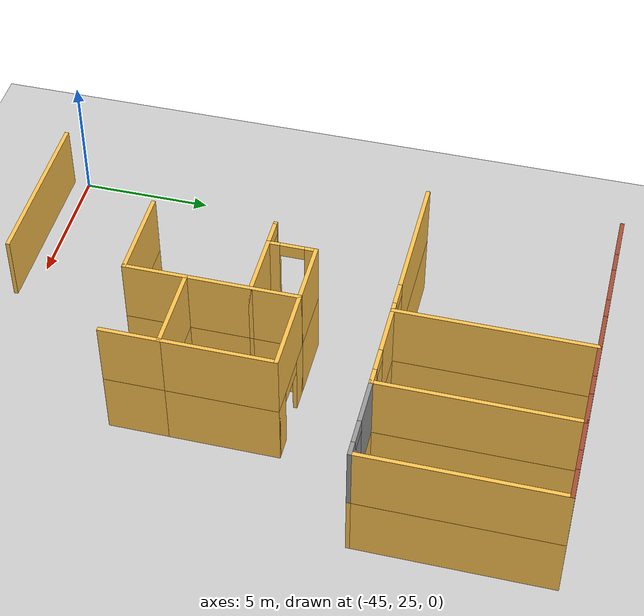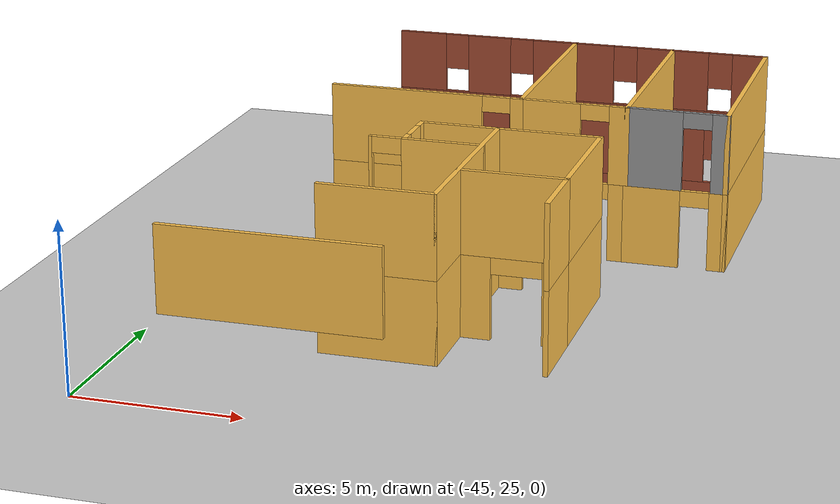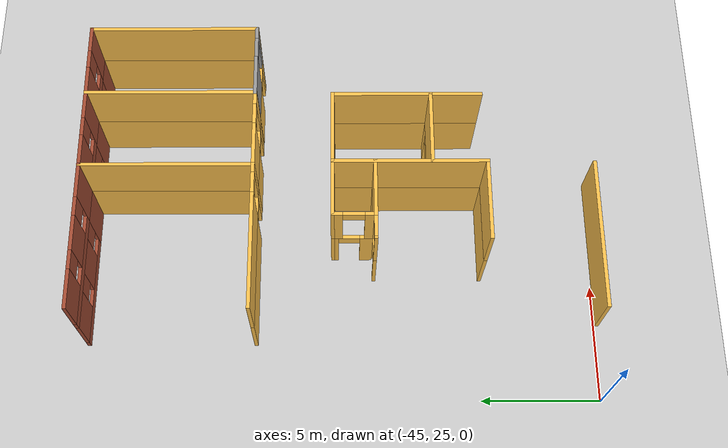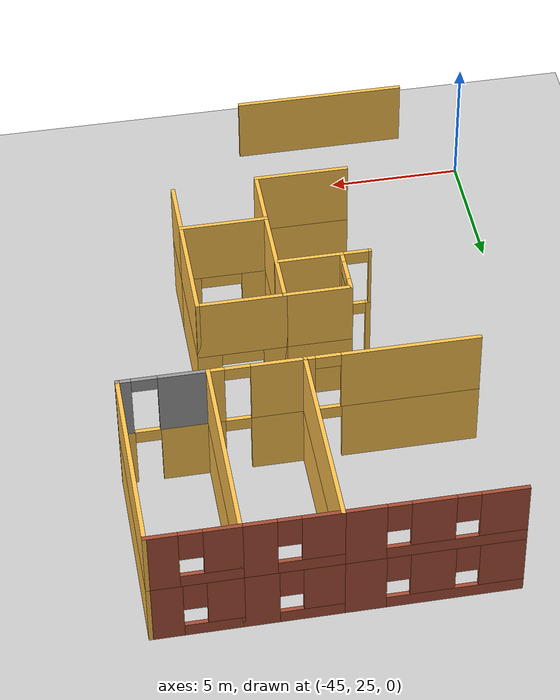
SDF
<sdf version="1.7">
 <world name="default">
  <model name="ground_plane">
   <static>1</static>
   <link name="link">
    <collision name="collision">
     <geometry><plane><normal>0 0 1</normal><size>100 100</size></plane></geometry>
     <surface>
      <contact><collide_bitmask>65535</collide_bitmask></contact>
      <friction><ode><mu>100</mu><mu2>50</mu2></ode></friction>
     </surface>
    </collision>
    <visual name="visual">
     <cast_shadows>0</cast_shadows>
     <geometry><plane><normal>0 0 1</normal><size>100 100</size></plane></geometry>
     <material>
      <script><uri>file://media/materials/scripts/gazebo.material</uri><name>Gazebo/Grey</name></script>
     </material>
    </visual>
   </link>
  </model>
  <model name="DepartmentBuilding">
   <pose>-25.6559 18.8293 0 0 -0 0</pose>
   <link name="Wall_258">
    <collision name="Wall_258_Collision">
     <geometry><box><size>7.25 0.15 2.5</size></box></geometry>
     <pose>0 0 1.25 0 -0 0</pose>
    </collision>
    <visual name="Wall_258_Visual">
     <pose>0 0 1.25 0 -0 0</pose>
     <geometry><box><size>7.25 0.15 2.5</size></box></geometry>
     <material>
      <script><uri>file://media/materials/scripts/gazebo.material</uri><name>Gazebo/Grey</name></script>
      <ambient>1 0.764706 0.305882 1</ambient>
     </material>
     <meta><layer>0</layer></meta>
    </visual>
    <pose>-4.28059 24.1391 0 0 -0 -1.5708</pose>
   </link>
   <link name="Wall_262">
    <pose>-5.83059 27.6891 0 0 -0 3.14159</pose>
    <visual name="Wall_262_Visual_0">
     <pose>-1.01733 0 1.25 0 -0 0</pose>
     <geometry><box><size>1.21533 0.15 2.5</size></box></geometry>
     <material>
      <script><uri>file://media/materials/scripts/gazebo.material</uri><name>Gazebo/Bricks</name></script>
      <ambient>1 1 1 1</ambient>
     </material>
     <meta><layer>0</layer></meta>
    </visual>
    <collision name="Wall_262_Collision_0">
     <geometry><box><size>1.21533 0.15 2.5</size></box></geometry>
     <pose>-1.01733 0 1.25 0 -0 0</pose>
    </collision>
    <visual name="Wall_262_Visual_1">
     <pose>0.607666 0 0.25 0 -0 0</pose>
     <geometry><box><size>2.03467 0.15 0.5</size></box></geometry>
     <material>
      <script><uri>file://media/materials/scripts/gazebo.material</uri><name>Gazebo/Bricks</name></script>
      <ambient>1 1 1 1</ambient>
     </material>
     <meta><layer>0</layer></meta>
    </visual>
    <collision name="Wall_262_Collision_1">
     <geometry><box><size>2.03467 0.15 0.5</size></box></geometry>
     <pose>0.607666 0 0.25 0 -0 0</pose>
    </collision>
    <visual name="Wall_262_Visual_2">
     <pose>1.00767 0 1.5 0 -0 0</pose>
     <geometry><box><size>1.23467 0.15 2</size></box></geometry>
     <material>
      <script><uri>file://media/materials/scripts/gazebo.material</uri><name>Gazebo/Bricks</name></script>
      <ambient>1 1 1 1</ambient>
     </material>
     <meta><layer>0</layer></meta>
    </visual>
    <collision name="Wall_262_Collision_2">
     <geometry><box><size>1.23467 0.15 2</size></box></geometry>
     <pose>1.00767 0 1.5 0 -0 0</pose>
    </collision>
    <visual name="Wall_262_Visual_3">
     <pose>-0.009667 0 1.9 0 -0 0</pose>
     <geometry><box><size>0.8 0.15 1.2</size></box></geometry>
     <material>
      <script><uri>file://media/materials/scripts/gazebo.material</uri><name>Gazebo/Bricks</name></script>
      <ambient>1 1 1 1</ambient>
     </material>
     <meta><layer>0</layer></meta>
    </visual>
    <collision name="Wall_262_Collision_3">
     <geometry><box><size>0.8 0.15 1.2</size></box></geometry>
     <pose>-0.009667 0 1.9 0 -0 0</pose>
    </collision>
   </link>
   <link name="Wall_263">
    <collision name="Wall_263_Collision">
     <geometry><box><size>7.25 0.15 2.5</size></box></geometry>
     <pose>0 0 1.25 0 -0 0</pose>
    </collision>
    <visual name="Wall_263_Visual">
     <pose>0 0 1.25 0 -0 0</pose>
     <geometry><box><size>7.25 0.15 2.5</size></box></geometry>
     <material>
      <script><uri>file://media/materials/scripts/gazebo.material</uri><name>Gazebo/Grey</name></script>
      <ambient>1 0.764706 0.305882 1</ambient>
     </material>
     <meta><layer>0</layer></meta>
    </visual>
    <pose>-7.38059 24.1391 0 0 -0 -1.5708</pose>
   </link>
   <link name="Wall_264">
    <pose>-5.83059 20.5891 0 0 -0 0</pose>
    <visual name="Wall_264_Visual_0">
     <pose>-0.735334 0 1.25 0 -0 0</pose>
     <geometry><box><size>1.77933 0.15 2.5</size></box></geometry>
     <material>
      <script><uri>file://media/materials/scripts/gazebo.material</uri><name>Gazebo/Grey</name></script>
      <ambient>1 0.764706 0.305882 1</ambient>
     </material>
     <meta><layer>0</layer></meta>
    </visual>
    <collision name="Wall_264_Collision_0">
     <geometry><box><size>1.77933 0.15 2.5</size></box></geometry>
     <pose>-0.735334 0 1.25 0 -0 0</pose>
    </collision>
    <visual name="Wall_264_Visual_1">
     <pose>1.33967 0 1.25 0 -0 0</pose>
     <geometry><box><size>0.570667 0.15 2.5</size></box></geometry>
     <material>
      <script><uri>file://media/materials/scripts/gazebo.material</uri><name>Gazebo/Grey</name></script>
      <ambient>1 0.764706 0.305882 1</ambient>
     </material>
     <meta><layer>0</layer></meta>
    </visual>
    <collision name="Wall_264_Collision_1">
     <geometry><box><size>0.570667 0.15 2.5</size></box></geometry>
     <pose>1.33967 0 1.25 0 -0 0</pose>
    </collision>
    <visual name="Wall_264_Visual_2">
     <pose>0.604333 0 2.25 0 -0 0</pose>
     <geometry><box><size>0.9 0.15 0.5</size></box></geometry>
     <material>
      <script><uri>file://media/materials/scripts/gazebo.material</uri><name>Gazebo/Grey</name></script>
      <ambient>1 0.764706 0.305882 1</ambient>
     </material>
     <meta><layer>0</layer></meta>
    </visual>
    <collision name="Wall_264_Collision_2">
     <geometry><box><size>0.9 0.15 0.5</size></box></geometry>
     <pose>0.604333 0 2.25 0 -0 0</pose>
    </collision>
   </link>
   <link name="Wall_266">
    <pose>-9.05559 27.6891 0 0 -0 3.14159</pose>
    <visual name="Wall_266_Visual_0">
     <pose>-1.08977 0 1.25 0 -0 0</pose>
     <geometry><box><size>1.32045 0.15 2.5</size></box></geometry>
     <material>
      <script><uri>file://media/materials/scripts/gazebo.material</uri><name>Gazebo/Bricks</name></script>
      <ambient>1 1 1 1</ambient>
     </material>
     <meta><layer>0</layer></meta>
    </visual>
    <collision name="Wall_266_Collision_0">
     <geometry><box><size>1.32045 0.15 2.5</size></box></geometry>
     <pose>-1.08977 0 1.25 0 -0 0</pose>
    </collision>
    <visual name="Wall_266_Visual_1">
     <pose>0.660227 0 0.25 0 -0 0</pose>
     <geometry><box><size>2.17955 0.15 0.5</size></box></geometry>
     <material>
      <script><uri>file://media/materials/scripts/gazebo.material</uri><name>Gazebo/Bricks</name></script>
      <ambient>1 1 1 1</ambient>
     </material>
     <meta><layer>0</layer></meta>
    </visual>
    <collision name="Wall_266_Collision_1">
     <geometry><box><size>2.17955 0.15 0.5</size></box></geometry>
     <pose>0.660227 0 0.25 0 -0 0</pose>
    </collision>
    <visual name="Wall_266_Visual_2">
     <pose>1.06023 0 1.5 0 -0 0</pose>
     <geometry><box><size>1.37955 0.15 2</size></box></geometry>
     <material>
      <script><uri>file://media/materials/scripts/gazebo.material</uri><name>Gazebo/Bricks</name></script>
      <ambient>1 1 1 1</ambient>
     </material>
     <meta><layer>0</layer></meta>
    </visual>
    <collision name="Wall_266_Collision_2">
     <geometry><box><size>1.37955 0.15 2</size></box></geometry>
     <pose>1.06023 0 1.5 0 -0 0</pose>
    </collision>
    <visual name="Wall_266_Visual_3">
     <pose>-0.029547 0 1.9 0 -0 0</pose>
     <geometry><box><size>0.8 0.15 1.2</size></box></geometry>
     <material>
      <script><uri>file://media/materials/scripts/gazebo.material</uri><name>Gazebo/Bricks</name></script>
      <ambient>1 1 1 1</ambient>
     </material>
     <meta><layer>0</layer></meta>
    </visual>
    <collision name="Wall_266_Collision_3">
     <geometry><box><size>0.8 0.15 1.2</size></box></geometry>
     <pose>-0.029547 0 1.9 0 -0 0</pose>
    </collision>
   </link>
   <link name="Wall_267">
    <collision name="Wall_267_Collision">
     <geometry><box><size>7.25 0.15 2.5</size></box></geometry>
     <pose>0 0 1.25 0 -0 0</pose>
    </collision>
    <visual name="Wall_267_Visual">
     <pose>0 0 1.25 0 -0 0</pose>
     <geometry><box><size>7.25 0.15 2.5</size></box></geometry>
     <material>
      <script><uri>file://media/materials/scripts/gazebo.material</uri><name>Gazebo/Grey</name></script>
      <ambient>1 0.764706 0.305882 1</ambient>
     </material>
     <meta><layer>0</layer></meta>
    </visual>
    <pose>-10.7306 24.1391 0 0 -0 -1.5708</pose>
   </link>
   <link name="Wall_268">
    <pose>-9.05559 20.5891 0 0 -0 0</pose>
    <visual name="Wall_268_Visual_0">
     <pose>-0.758203 0 1.25 0 -0 0</pose>
     <geometry><box><size>1.98359 0.15 2.5</size></box></geometry>
     <material>
      <script><uri>file://media/materials/scripts/gazebo.material</uri><name>Gazebo/Grey</name></script>
      <ambient>1 0.764706 0.305882 1</ambient>
     </material>
     <meta><layer>0</layer></meta>
    </visual>
    <collision name="Wall_268_Collision_0">
     <geometry><box><size>1.98359 0.15 2.5</size></box></geometry>
     <pose>-0.758203 0 1.25 0 -0 0</pose>
    </collision>
    <visual name="Wall_268_Visual_1">
     <pose>1.4418 0 1.25 0 -0 0</pose>
     <geometry><box><size>0.616405 0.15 2.5</size></box></geometry>
     <material>
      <script><uri>file://media/materials/scripts/gazebo.material</uri><name>Gazebo/Grey</name></script>
      <ambient>1 0.764706 0.305882 1</ambient>
     </material>
     <meta><layer>0</layer></meta>
    </visual>
    <collision name="Wall_268_Collision_1">
     <geometry><box><size>0.616405 0.15 2.5</size></box></geometry>
     <pose>1.4418 0 1.25 0 -0 0</pose>
    </collision>
    <visual name="Wall_268_Visual_2">
     <pose>0.683595 0 2.25 0 -0 0</pose>
     <geometry><box><size>0.9 0.15 0.5</size></box></geometry>
     <material>
      <script><uri>file://media/materials/scripts/gazebo.material</uri><name>Gazebo/Grey</name></script>
      <ambient>1 0.764706 0.305882 1</ambient>
     </material>
     <meta><layer>0</layer></meta>
    </visual>
    <collision name="Wall_268_Collision_2">
     <geometry><box><size>0.9 0.15 0.5</size></box></geometry>
     <pose>0.683595 0 2.25 0 -0 0</pose>
    </collision>
   </link>
   <link name="Wall_270">
    <pose>-13.7806 27.6891 0 0 -0 3.14159</pose>
    <visual name="Wall_270_Visual_0">
     <pose>-2.34715 0 1.25 0 -0 0</pose>
     <geometry><box><size>1.5557 0.15 2.5</size></box></geometry>
     <material>
      <script><uri>file://media/materials/scripts/gazebo.material</uri><name>Gazebo/Bricks</name></script>
      <ambient>1 1 1 1</ambient>
     </material>
     <meta><layer>0</layer></meta>
    </visual>
    <collision name="Wall_270_Collision_0">
     <geometry><box><size>1.5557 0.15 2.5</size></box></geometry>
     <pose>-2.34715 0 1.25 0 -0 0</pose>
    </collision>
    <visual name="Wall_270_Visual_1">
     <pose>0.777849 0 0.25 0 -0 0</pose>
     <geometry><box><size>4.6943 0.15 0.5</size></box></geometry>
     <material>
      <script><uri>file://media/materials/scripts/gazebo.material</uri><name>Gazebo/Bricks</name></script>
      <ambient>1 1 1 1</ambient>
     </material>
     <meta><layer>0</layer></meta>
    </visual>
    <collision name="Wall_270_Collision_1">
     <geometry><box><size>4.6943 0.15 0.5</size></box></geometry>
     <pose>0.777849 0 0.25 0 -0 0</pose>
    </collision>
    <visual name="Wall_270_Visual_2">
     <pose>-0.001207 0 1.5 0 -0 0</pose>
     <geometry><box><size>1.53619 0.15 2</size></box></geometry>
     <material>
      <script><uri>file://media/materials/scripts/gazebo.material</uri><name>Gazebo/Bricks</name></script>
      <ambient>1 1 1 1</ambient>
     </material>
     <meta><layer>0</layer></meta>
    </visual>
    <collision name="Wall_270_Collision_2">
     <geometry><box><size>1.53619 0.15 2</size></box></geometry>
     <pose>-0.001207 0 1.5 0 -0 0</pose>
    </collision>
    <visual name="Wall_270_Visual_3">
     <pose>2.34594 0 1.5 0 -0 0</pose>
     <geometry><box><size>1.55811 0.15 2</size></box></geometry>
     <material>
      <script><uri>file://media/materials/scripts/gazebo.material</uri><name>Gazebo/Bricks</name></script>
      <ambient>1 1 1 1</ambient>
     </material>
     <meta><layer>0</layer></meta>
    </visual>
    <collision name="Wall_270_Collision_3">
     <geometry><box><size>1.55811 0.15 2</size></box></geometry>
     <pose>2.34594 0 1.5 0 -0 0</pose>
    </collision>
    <visual name="Wall_270_Visual_4">
     <pose>-1.1693 0 1.9 0 -0 0</pose>
     <geometry><box><size>0.8 0.15 1.2</size></box></geometry>
     <material>
      <script><uri>file://media/materials/scripts/gazebo.material</uri><name>Gazebo/Bricks</name></script>
      <ambient>1 1 1 1</ambient>
     </material>
     <meta><layer>0</layer></meta>
    </visual>
    <collision name="Wall_270_Collision_4">
     <geometry><box><size>0.8 0.15 1.2</size></box></geometry>
     <pose>-1.1693 0 1.9 0 -0 0</pose>
    </collision>
    <visual name="Wall_270_Visual_5">
     <pose>1.16689 0 1.9 0 -0 0</pose>
     <geometry><box><size>0.8 0.15 1.2</size></box></geometry>
     <material>
      <script><uri>file://media/materials/scripts/gazebo.material</uri><name>Gazebo/Bricks</name></script>
      <ambient>1 1 1 1</ambient>
     </material>
     <meta><layer>0</layer></meta>
    </visual>
    <collision name="Wall_270_Collision_5">
     <geometry><box><size>0.8 0.15 1.2</size></box></geometry>
     <pose>1.16689 0 1.9 0 -0 0</pose>
    </collision>
   </link>
   <link name="Wall_272">
    <pose>-13.7805 20.5892 0 0 -0 -5.1e-05</pose>
    <visual name="Wall_272_Visual_0">
     <pose>-0.681368 0 1.25 0 -0 0</pose>
     <geometry><box><size>4.88726 0.15 2.5</size></box></geometry>
     <material>
      <script><uri>file://media/materials/scripts/gazebo.material</uri><name>Gazebo/Grey</name></script>
      <ambient>1 0.764706 0.305882 1</ambient>
     </material>
     <meta><layer>0</layer></meta>
    </visual>
    <collision name="Wall_272_Collision_0">
     <geometry><box><size>4.88726 0.15 2.5</size></box></geometry>
     <pose>-0.681368 0 1.25 0 -0 0</pose>
    </collision>
    <visual name="Wall_272_Visual_1">
     <pose>2.89363 0 1.25 0 -0 0</pose>
     <geometry><box><size>0.462736 0.15 2.5</size></box></geometry>
     <material>
      <script><uri>file://media/materials/scripts/gazebo.material</uri><name>Gazebo/Grey</name></script>
      <ambient>1 0.764706 0.305882 1</ambient>
     </material>
     <meta><layer>0</layer></meta>
    </visual>
    <collision name="Wall_272_Collision_1">
     <geometry><box><size>0.462736 0.15 2.5</size></box></geometry>
     <pose>2.89363 0 1.25 0 -0 0</pose>
    </collision>
    <visual name="Wall_272_Visual_2">
     <pose>2.21226 0 2.25 0 -0 0</pose>
     <geometry><box><size>0.9 0.15 0.5</size></box></geometry>
     <material>
      <script><uri>file://media/materials/scripts/gazebo.material</uri><name>Gazebo/Grey</name></script>
      <ambient>1 0.764706 0.305882 1</ambient>
     </material>
     <meta><layer>0</layer></meta>
    </visual>
    <collision name="Wall_272_Collision_2">
     <geometry><box><size>0.9 0.15 0.5</size></box></geometry>
     <pose>2.21226 0 2.25 0 -0 0</pose>
    </collision>
   </link>
   <link name="Wall_294">
    <collision name="Wall_294_Collision">
     <geometry><box><size>3.5 0.15 2.5</size></box></geometry>
     <pose>0 0 1.25 0 -0 0</pose>
    </collision>
    <visual name="Wall_294_Visual">
     <pose>0 0 1.25 0 -0 0</pose>
     <geometry><box><size>3.5 0.15 2.5</size></box></geometry>
     <material>
      <script><uri>file://media/materials/scripts/gazebo.material</uri><name>Gazebo/Grey</name></script>
      <ambient>1 0.764706 0.305882 1</ambient>
     </material>
     <meta><layer>0</layer></meta>
    </visual>
    <pose>-12.2556 10.9891 0 0 -0 0</pose>
   </link>
   <link name="Wall_295">
    <collision name="Wall_295_Collision">
     <geometry><box><size>6.5 0.15 2.5</size></box></geometry>
     <pose>0 0 1.25 0 -0 0</pose>
    </collision>
    <visual name="Wall_295_Visual">
     <pose>0 0 1.25 0 -0 0</pose>
     <geometry><box><size>6.5 0.15 2.5</size></box></geometry>
     <material>
      <script><uri>file://media/materials/scripts/gazebo.material</uri><name>Gazebo/Grey</name></script>
      <ambient>1 0.764706 0.305882 1</ambient>
     </material>
     <meta><layer>0</layer></meta>
    </visual>
    <pose>-10.5806 14.1641 0 0 -0 1.5708</pose>
   </link>
   <link name="Wall_296">
    <collision name="Wall_296_Collision">
     <geometry><box><size>2.5 0.15 2.5</size></box></geometry>
     <pose>0 0 1.25 0 -0 0</pose>
    </collision>
    <visual name="Wall_296_Visual">
     <pose>0 0 1.25 0 -0 0</pose>
     <geometry><box><size>2.5 0.15 2.5</size></box></geometry>
     <material>
      <script><uri>file://media/materials/scripts/gazebo.material</uri><name>Gazebo/Grey</name></script>
      <ambient>1 0.764706 0.305882 1</ambient>
     </material>
     <meta><layer>0</layer></meta>
    </visual>
    <pose>-11.7556 17.3391 0 0 -0 3.14159</pose>
   </link>
   <link name="Wall_303">
    <pose>-12.2556 15.5891 0 0 -0 0</pose>
    <visual name="Wall_303_Visual_0">
     <pose>-1.6565 0 1.25 0 -0 0</pose>
     <geometry><box><size>0.187 0.15 2.5</size></box></geometry>
     <material>
      <script><uri>file://media/materials/scripts/gazebo.material</uri><name>Gazebo/Grey</name></script>
      <ambient>1 0.764706 0.305882 1</ambient>
     </material>
     <meta><layer>0</layer></meta>
    </visual>
    <collision name="Wall_303_Collision_0">
     <geometry><box><size>0.187 0.15 2.5</size></box></geometry>
     <pose>-1.6565 0 1.25 0 -0 0</pose>
    </collision>
    <visual name="Wall_303_Visual_1">
     <pose>0.5435 0 1.25 0 -0 0</pose>
     <geometry><box><size>2.413 0.15 2.5</size></box></geometry>
     <material>
      <script><uri>file://media/materials/scripts/gazebo.material</uri><name>Gazebo/Grey</name></script>
      <ambient>1 0.764706 0.305882 1</ambient>
     </material>
     <meta><layer>0</layer></meta>
    </visual>
    <collision name="Wall_303_Collision_1">
     <geometry><box><size>2.413 0.15 2.5</size></box></geometry>
     <pose>0.5435 0 1.25 0 -0 0</pose>
    </collision>
    <visual name="Wall_303_Visual_2">
     <pose>-1.113 0 2.25 0 -0 0</pose>
     <geometry><box><size>0.9 0.15 0.5</size></box></geometry>
     <material>
      <script><uri>file://media/materials/scripts/gazebo.material</uri><name>Gazebo/Grey</name></script>
      <ambient>1 0.764706 0.305882 1</ambient>
     </material>
     <meta><layer>0</layer></meta>
    </visual>
    <collision name="Wall_303_Collision_2">
     <geometry><box><size>0.9 0.15 0.5</size></box></geometry>
     <pose>-1.113 0 2.25 0 -0 0</pose>
    </collision>
   </link>
   <link name="Wall_305">
    <pose>-12.9306 16.5391 0 0 -0 -1.5708</pose>
    <visual name="Wall_305_Visual_0">
     <pose>-0.718238 0 1.25 0 -0 0</pose>
     <geometry><box><size>0.313523 0.15 2.5</size></box></geometry>
     <material>
      <script><uri>file://media/materials/scripts/gazebo.material</uri><name>Gazebo/Grey</name></script>
      <ambient>1 0.764706 0.305882 1</ambient>
     </material>
     <meta><layer>0</layer></meta>
    </visual>
    <collision name="Wall_305_Collision_0">
     <geometry><box><size>0.313523 0.15 2.5</size></box></geometry>
     <pose>-0.718238 0 1.25 0 -0 0</pose>
    </collision>
    <visual name="Wall_305_Visual_1">
     <pose>0.606762 0 1.25 0 -0 0</pose>
     <geometry><box><size>0.536477 0.15 2.5</size></box></geometry>
     <material>
      <script><uri>file://media/materials/scripts/gazebo.material</uri><name>Gazebo/Grey</name></script>
      <ambient>1 0.764706 0.305882 1</ambient>
     </material>
     <meta><layer>0</layer></meta>
    </visual>
    <collision name="Wall_305_Collision_1">
     <geometry><box><size>0.536477 0.15 2.5</size></box></geometry>
     <pose>0.606762 0 1.25 0 -0 0</pose>
    </collision>
    <visual name="Wall_305_Visual_2">
     <pose>-0.111477 0 2.25 0 -0 0</pose>
     <geometry><box><size>0.9 0.15 0.5</size></box></geometry>
     <material>
      <script><uri>file://media/materials/scripts/gazebo.material</uri><name>Gazebo/Grey</name></script>
      <ambient>1 0.764706 0.305882 1</ambient>
     </material>
     <meta><layer>0</layer></meta>
    </visual>
    <collision name="Wall_305_Collision_2">
     <geometry><box><size>0.9 0.15 0.5</size></box></geometry>
     <pose>-0.111477 0 2.25 0 -0 0</pose>
    </collision>
   </link>
   <link name="Wall_307">
    <pose>-9.03059 17.3391 0 0 -0 0</pose>
    <visual name="Wall_307_Visual_0">
     <pose>-1.19293 0 1.25 0 -0 0</pose>
     <geometry><box><size>0.864143 0.15 2.5</size></box></geometry>
     <material>
      <script><uri>file://media/materials/scripts/gazebo.material</uri><name>Gazebo/Grey</name></script>
      <ambient>1 0.764706 0.305882 1</ambient>
     </material>
     <meta><layer>0</layer></meta>
    </visual>
    <collision name="Wall_307_Collision_0">
     <geometry><box><size>0.864143 0.15 2.5</size></box></geometry>
     <pose>-1.19293 0 1.25 0 -0 0</pose>
    </collision>
    <visual name="Wall_307_Visual_1">
     <pose>1.18207 0 1.25 0 -0 0</pose>
     <geometry><box><size>0.885857 0.15 2.5</size></box></geometry>
     <material>
      <script><uri>file://media/materials/scripts/gazebo.material</uri><name>Gazebo/Grey</name></script>
      <ambient>1 0.764706 0.305882 1</ambient>
     </material>
     <meta><layer>0</layer></meta>
    </visual>
    <collision name="Wall_307_Collision_1">
     <geometry><box><size>0.885857 0.15 2.5</size></box></geometry>
     <pose>1.18207 0 1.25 0 -0 0</pose>
    </collision>
    <visual name="Wall_307_Visual_2">
     <pose>-0.010857 0 2.25 0 -0 0</pose>
     <geometry><box><size>1.5 0.15 0.5</size></box></geometry>
     <material>
      <script><uri>file://media/materials/scripts/gazebo.material</uri><name>Gazebo/Grey</name></script>
      <ambient>1 0.764706 0.305882 1</ambient>
     </material>
     <meta><layer>0</layer></meta>
    </visual>
    <collision name="Wall_307_Collision_2">
     <geometry><box><size>1.5 0.15 0.5</size></box></geometry>
     <pose>-0.010857 0 2.25 0 -0 0</pose>
    </collision>
   </link>
   <link name="Wall_309">
    <collision name="Wall_309_Collision">
     <geometry><box><size>4.25 0.15 2.5</size></box></geometry>
     <pose>0 0 1.25 0 -0 0</pose>
    </collision>
    <visual name="Wall_309_Visual">
     <pose>0 0 1.25 0 -0 0</pose>
     <geometry><box><size>4.25 0.15 2.5</size></box></geometry>
     <material>
      <script><uri>file://media/materials/scripts/gazebo.material</uri><name>Gazebo/Grey</name></script>
      <ambient>1 0.764706 0.305882 1</ambient>
     </material>
     <meta><layer>0</layer></meta>
    </visual>
    <pose>-7.48059 15.2891 0 0 -0 -1.5708</pose>
   </link>
   <link name="Wall_310">
    <pose>-9.03059 13.2391 0 0 -0 3.14159</pose>
    <visual name="Wall_310_Visual_0">
     <pose>-1.26207 0 1.25 0 -0 0</pose>
     <geometry><box><size>0.725857 0.15 2.5</size></box></geometry>
     <material>
      <script><uri>file://media/materials/scripts/gazebo.material</uri><name>Gazebo/Grey</name></script>
      <ambient>1 0.764706 0.305882 1</ambient>
     </material>
     <meta><layer>0</layer></meta>
    </visual>
    <collision name="Wall_310_Collision_0">
     <geometry><box><size>0.725857 0.15 2.5</size></box></geometry>
     <pose>-1.26207 0 1.25 0 -0 0</pose>
    </collision>
    <visual name="Wall_310_Visual_1">
     <pose>1.11293 0 1.25 0 -0 0</pose>
     <geometry><box><size>1.02414 0.15 2.5</size></box></geometry>
     <material>
      <script><uri>file://media/materials/scripts/gazebo.material</uri><name>Gazebo/Grey</name></script>
      <ambient>1 0.764706 0.305882 1</ambient>
     </material>
     <meta><layer>0</layer></meta>
    </visual>
    <collision name="Wall_310_Collision_1">
     <geometry><box><size>1.02414 0.15 2.5</size></box></geometry>
     <pose>1.11293 0 1.25 0 -0 0</pose>
    </collision>
    <visual name="Wall_310_Visual_2">
     <pose>-0.149143 0 2.25 0 -0 0</pose>
     <geometry><box><size>1.5 0.15 0.5</size></box></geometry>
     <material>
      <script><uri>file://media/materials/scripts/gazebo.material</uri><name>Gazebo/Grey</name></script>
      <ambient>1 0.764706 0.305882 1</ambient>
     </material>
     <meta><layer>0</layer></meta>
    </visual>
    <collision name="Wall_310_Collision_2">
     <geometry><box><size>1.5 0.15 0.5</size></box></geometry>
     <pose>-0.149143 0 2.25 0 -0 0</pose>
    </collision>
   </link>
   <link name="Wall_312">
    <collision name="Wall_312_Collision">
     <geometry><box><size>2.25 0.15 2.5</size></box></geometry>
     <pose>0 0 1.25 0 -0 0</pose>
    </collision>
    <visual name="Wall_312_Visual">
     <pose>0 0 1.25 0 -0 0</pose>
     <geometry><box><size>2.25 0.15 2.5</size></box></geometry>
     <material>
      <script><uri>file://media/materials/scripts/gazebo.material</uri><name>Gazebo/Grey</name></script>
      <ambient>1 0.764706 0.305882 1</ambient>
     </material>
     <meta><layer>0</layer></meta>
    </visual>
    <pose>-7.48059 12.1891 0 0 -0 -1.5708</pose>
   </link>
   <link name="Wall_928">
    <collision name="Wall_928_Collision">
     <geometry><box><size>7.25 0.15 2.5</size></box></geometry>
     <pose>0 0 1.25 0 -0 0</pose>
    </collision>
    <visual name="Wall_928_Visual">
     <pose>0 0 1.25 0 -0 0</pose>
     <geometry><box><size>7.25 0.15 2.5</size></box></geometry>
     <material>
      <script><uri>file://media/materials/scripts/gazebo.material</uri><name>Gazebo/Grey</name></script>
      <ambient>1 0.764706 0.305882 1</ambient>
     </material>
     <meta><layer>1</layer></meta>
    </visual>
    <pose>-4.28059 24.1391 2.5 0 -0 -1.5708</pose>
   </link>
   <link name="Wall_930">
    <pose>-5.83059 27.6891 2.5 0 -0 3.14159</pose>
    <visual name="Wall_930_Visual_0">
     <pose>-1.04616 0 1.25 0 -0 0</pose>
     <geometry><box><size>1.15767 0.15 2.5</size></box></geometry>
     <material>
      <script><uri>file://media/materials/scripts/gazebo.material</uri><name>Gazebo/Bricks</name></script>
      <ambient>1 1 1 1</ambient>
     </material>
     <meta><layer>1</layer></meta>
    </visual>
    <collision name="Wall_930_Collision_0">
     <geometry><box><size>1.15767 0.15 2.5</size></box></geometry>
     <pose>-1.04616 0 1.25 0 -0 0</pose>
    </collision>
    <visual name="Wall_930_Visual_1">
     <pose>0.578837 0 0.25 0 -0 0</pose>
     <geometry><box><size>2.09233 0.15 0.5</size></box></geometry>
     <material>
      <script><uri>file://media/materials/scripts/gazebo.material</uri><name>Gazebo/Bricks</name></script>
      <ambient>1 1 1 1</ambient>
     </material>
     <meta><layer>1</layer></meta>
    </visual>
    <collision name="Wall_930_Collision_1">
     <geometry><box><size>2.09233 0.15 0.5</size></box></geometry>
     <pose>0.578837 0 0.25 0 -0 0</pose>
    </collision>
    <visual name="Wall_930_Visual_2">
     <pose>0.978837 0 1.5 0 -0 0</pose>
     <geometry><box><size>1.29233 0.15 2</size></box></geometry>
     <material>
      <script><uri>file://media/materials/scripts/gazebo.material</uri><name>Gazebo/Bricks</name></script>
      <ambient>1 1 1 1</ambient>
     </material>
     <meta><layer>1</layer></meta>
    </visual>
    <collision name="Wall_930_Collision_2">
     <geometry><box><size>1.29233 0.15 2</size></box></geometry>
     <pose>0.978837 0 1.5 0 -0 0</pose>
    </collision>
    <visual name="Wall_930_Visual_3">
     <pose>-0.067327 0 1.9 0 -0 0</pose>
     <geometry><box><size>0.8 0.15 1.2</size></box></geometry>
     <material>
      <script><uri>file://media/materials/scripts/gazebo.material</uri><name>Gazebo/Bricks</name></script>
      <ambient>1 1 1 1</ambient>
     </material>
     <meta><layer>1</layer></meta>
    </visual>
    <collision name="Wall_930_Collision_3">
     <geometry><box><size>0.8 0.15 1.2</size></box></geometry>
     <pose>-0.067327 0 1.9 0 -0 0</pose>
    </collision>
   </link>
   <link name="Wall_931">
    <collision name="Wall_931_Collision">
     <geometry><box><size>7.25 0.15 2.5</size></box></geometry>
     <pose>0 0 1.25 0 -0 0</pose>
    </collision>
    <visual name="Wall_931_Visual">
     <pose>0 0 1.25 0 -0 0</pose>
     <geometry><box><size>7.25 0.15 2.5</size></box></geometry>
     <material>
      <script><uri>file://media/materials/scripts/gazebo.material</uri><name>Gazebo/Grey</name></script>
      <ambient>1 0.764706 0.305882 1</ambient>
     </material>
     <meta><layer>1</layer></meta>
    </visual>
    <pose>-7.38059 24.1391 2.5 0 -0 -1.5708</pose>
   </link>
   <link name="Wall_932">
    <pose>-5.83059 20.5891 2.5 0 -0 0</pose>
    <visual name="Wall_932_Visual_0">
     <pose>-0.719976 0 1.25 0 -0 0</pose>
     <geometry><box><size>1.81005 0.15 2.5</size></box></geometry>
     <material>
      <script><uri>file://media/materials/scripts/gazebo.material</uri><name>Gazebo/Grey</name></script>
      <ambient>1 1 1 1</ambient>
     </material>
     <meta><layer>1</layer></meta>
    </visual>
    <collision name="Wall_932_Collision_0">
     <geometry><box><size>1.81005 0.15 2.5</size></box></geometry>
     <pose>-0.719976 0 1.25 0 -0 0</pose>
    </collision>
    <visual name="Wall_932_Visual_1">
     <pose>1.35502 0 1.25 0 -0 0</pose>
     <geometry><box><size>0.539953 0.15 2.5</size></box></geometry>
     <material>
      <script><uri>file://media/materials/scripts/gazebo.material</uri><name>Gazebo/Grey</name></script>
      <ambient>1 1 1 1</ambient>
     </material>
     <meta><layer>1</layer></meta>
    </visual>
    <collision name="Wall_932_Collision_1">
     <geometry><box><size>0.539953 0.15 2.5</size></box></geometry>
     <pose>1.35502 0 1.25 0 -0 0</pose>
    </collision>
    <visual name="Wall_932_Visual_2">
     <pose>0.635047 0 2.25 0 -0 0</pose>
     <geometry><box><size>0.9 0.15 0.5</size></box></geometry>
     <material>
      <script><uri>file://media/materials/scripts/gazebo.material</uri><name>Gazebo/Grey</name></script>
      <ambient>1 1 1 1</ambient>
     </material>
     <meta><layer>1</layer></meta>
    </visual>
    <collision name="Wall_932_Collision_2">
     <geometry><box><size>0.9 0.15 0.5</size></box></geometry>
     <pose>0.635047 0 2.25 0 -0 0</pose>
    </collision>
   </link>
   <link name="Wall_933">
    <pose>-9.05559 27.6891 2.5 0 -0 3.14159</pose>
    <visual name="Wall_933_Visual_0">
     <pose>-1.11208 0 1.25 0 -0 0</pose>
     <geometry><box><size>1.27584 0.15 2.5</size></box></geometry>
     <material>
      <script><uri>file://media/materials/scripts/gazebo.material</uri><name>Gazebo/Bricks</name></script>
      <ambient>1 1 1 1</ambient>
     </material>
     <meta><layer>1</layer></meta>
    </visual>
    <collision name="Wall_933_Collision_0">
     <geometry><box><size>1.27584 0.15 2.5</size></box></geometry>
     <pose>-1.11208 0 1.25 0 -0 0</pose>
    </collision>
    <visual name="Wall_933_Visual_1">
     <pose>0.637922 0 0.25 0 -0 0</pose>
     <geometry><box><size>2.22416 0.15 0.5</size></box></geometry>
     <material>
      <script><uri>file://media/materials/scripts/gazebo.material</uri><name>Gazebo/Bricks</name></script>
      <ambient>1 1 1 1</ambient>
     </material>
     <meta><layer>1</layer></meta>
    </visual>
    <collision name="Wall_933_Collision_1">
     <geometry><box><size>2.22416 0.15 0.5</size></box></geometry>
     <pose>0.637922 0 0.25 0 -0 0</pose>
    </collision>
    <visual name="Wall_933_Visual_2">
     <pose>1.03792 0 1.5 0 -0 0</pose>
     <geometry><box><size>1.42416 0.15 2</size></box></geometry>
     <material>
      <script><uri>file://media/materials/scripts/gazebo.material</uri><name>Gazebo/Bricks</name></script>
      <ambient>1 1 1 1</ambient>
     </material>
     <meta><layer>1</layer></meta>
    </visual>
    <collision name="Wall_933_Collision_2">
     <geometry><box><size>1.42416 0.15 2</size></box></geometry>
     <pose>1.03792 0 1.5 0 -0 0</pose>
    </collision>
    <visual name="Wall_933_Visual_3">
     <pose>-0.074156 0 1.9 0 -0 0</pose>
     <geometry><box><size>0.8 0.15 1.2</size></box></geometry>
     <material>
      <script><uri>file://media/materials/scripts/gazebo.material</uri><name>Gazebo/Bricks</name></script>
      <ambient>1 1 1 1</ambient>
     </material>
     <meta><layer>1</layer></meta>
    </visual>
    <collision name="Wall_933_Collision_3">
     <geometry><box><size>0.8 0.15 1.2</size></box></geometry>
     <pose>-0.074156 0 1.9 0 -0 0</pose>
    </collision>
   </link>
   <link name="Wall_934">
    <collision name="Wall_934_Collision">
     <geometry><box><size>7.25 0.15 2.5</size></box></geometry>
     <pose>0 0 1.25 0 -0 0</pose>
    </collision>
    <visual name="Wall_934_Visual">
     <pose>0 0 1.25 0 -0 0</pose>
     <geometry><box><size>7.25 0.15 2.5</size></box></geometry>
     <material>
      <script><uri>file://media/materials/scripts/gazebo.material</uri><name>Gazebo/Grey</name></script>
      <ambient>1 0.764706 0.305882 1</ambient>
     </material>
     <meta><layer>1</layer></meta>
    </visual>
    <pose>-10.7306 24.1391 2.5 0 -0 -1.5708</pose>
   </link>
   <link name="Wall_935">
    <pose>-9.05559 20.5891 2.5 0 -0 0</pose>
    <visual name="Wall_935_Visual_0">
     <pose>-0.765988 0 1.25 0 -0 0</pose>
     <geometry><box><size>1.96802 0.15 2.5</size></box></geometry>
     <material>
      <script><uri>file://media/materials/scripts/gazebo.material</uri><name>Gazebo/Grey</name></script>
      <ambient>1 0.764706 0.305882 1</ambient>
     </material>
     <meta><layer>1</layer></meta>
    </visual>
    <collision name="Wall_935_Collision_0">
     <geometry><box><size>1.96802 0.15 2.5</size></box></geometry>
     <pose>-0.765988 0 1.25 0 -0 0</pose>
    </collision>
    <visual name="Wall_935_Visual_1">
     <pose>1.43401 0 1.25 0 -0 0</pose>
     <geometry><box><size>0.631976 0.15 2.5</size></box></geometry>
     <material>
      <script><uri>file://media/materials/scripts/gazebo.material</uri><name>Gazebo/Grey</name></script>
      <ambient>1 0.764706 0.305882 1</ambient>
     </material>
     <meta><layer>1</layer></meta>
    </visual>
    <collision name="Wall_935_Collision_1">
     <geometry><box><size>0.631976 0.15 2.5</size></box></geometry>
     <pose>1.43401 0 1.25 0 -0 0</pose>
    </collision>
    <visual name="Wall_935_Visual_2">
     <pose>0.668024 0 2.25 0 -0 0</pose>
     <geometry><box><size>0.9 0.15 0.5</size></box></geometry>
     <material>
      <script><uri>file://media/materials/scripts/gazebo.material</uri><name>Gazebo/Grey</name></script>
      <ambient>1 0.764706 0.305882 1</ambient>
     </material>
     <meta><layer>1</layer></meta>
    </visual>
    <collision name="Wall_935_Collision_2">
     <geometry><box><size>0.9 0.15 0.5</size></box></geometry>
     <pose>0.668024 0 2.25 0 -0 0</pose>
    </collision>
   </link>
   <link name="Wall_936">
    <pose>-13.7806 27.6891 2.5 0 -0 3.14159</pose>
    <visual name="Wall_936_Visual_0">
     <pose>-2.36191 0 1.25 0 -0 0</pose>
     <geometry><box><size>1.52617 0.15 2.5</size></box></geometry>
     <material>
      <script><uri>file://media/materials/scripts/gazebo.material</uri><name>Gazebo/Bricks</name></script>
      <ambient>1 1 1 1</ambient>
     </material>
     <meta><layer>1</layer></meta>
    </visual>
    <collision name="Wall_936_Collision_0">
     <geometry><box><size>1.52617 0.15 2.5</size></box></geometry>
     <pose>-2.36191 0 1.25 0 -0 0</pose>
    </collision>
    <visual name="Wall_936_Visual_1">
     <pose>0.763087 0 0.25 0 -0 0</pose>
     <geometry><box><size>4.72383 0.15 0.5</size></box></geometry>
     <material>
      <script><uri>file://media/materials/scripts/gazebo.material</uri><name>Gazebo/Bricks</name></script>
      <ambient>1 1 1 1</ambient>
     </material>
     <meta><layer>1</layer></meta>
    </visual>
    <collision name="Wall_936_Collision_1">
     <geometry><box><size>4.72383 0.15 0.5</size></box></geometry>
     <pose>0.763087 0 0.25 0 -0 0</pose>
    </collision>
    <visual name="Wall_936_Visual_2">
     <pose>-0.052352 0 1.5 0 -0 0</pose>
     <geometry><box><size>1.49295 0.15 2</size></box></geometry>
     <material>
      <script><uri>file://media/materials/scripts/gazebo.material</uri><name>Gazebo/Bricks</name></script>
      <ambient>1 1 1 1</ambient>
     </material>
     <meta><layer>1</layer></meta>
    </visual>
    <collision name="Wall_936_Collision_2">
     <geometry><box><size>1.49295 0.15 2</size></box></geometry>
     <pose>-0.052352 0 1.5 0 -0 0</pose>
    </collision>
    <visual name="Wall_936_Visual_3">
     <pose>2.30956 0 1.5 0 -0 0</pose>
     <geometry><box><size>1.63088 0.15 2</size></box></geometry>
     <material>
      <script><uri>file://media/materials/scripts/gazebo.material</uri><name>Gazebo/Bricks</name></script>
      <ambient>1 1 1 1</ambient>
     </material>
     <meta><layer>1</layer></meta>
    </visual>
    <collision name="Wall_936_Collision_3">
     <geometry><box><size>1.63088 0.15 2</size></box></geometry>
     <pose>2.30956 0 1.5 0 -0 0</pose>
    </collision>
    <visual name="Wall_936_Visual_4">
     <pose>-1.19883 0 1.9 0 -0 0</pose>
     <geometry><box><size>0.8 0.15 1.2</size></box></geometry>
     <material>
      <script><uri>file://media/materials/scripts/gazebo.material</uri><name>Gazebo/Bricks</name></script>
      <ambient>1 1 1 1</ambient>
     </material>
     <meta><layer>1</layer></meta>
    </visual>
    <collision name="Wall_936_Collision_4">
     <geometry><box><size>0.8 0.15 1.2</size></box></geometry>
     <pose>-1.19883 0 1.9 0 -0 0</pose>
    </collision>
    <visual name="Wall_936_Visual_5">
     <pose>1.09412 0 1.9 0 -0 0</pose>
     <geometry><box><size>0.8 0.15 1.2</size></box></geometry>
     <material>
      <script><uri>file://media/materials/scripts/gazebo.material</uri><name>Gazebo/Bricks</name></script>
      <ambient>1 1 1 1</ambient>
     </material>
     <meta><layer>1</layer></meta>
    </visual>
    <collision name="Wall_936_Collision_5">
     <geometry><box><size>0.8 0.15 1.2</size></box></geometry>
     <pose>1.09412 0 1.9 0 -0 0</pose>
    </collision>
   </link>
   <link name="Wall_938">
    <pose>-13.7805 20.5892 2.5 0 -0 -5.1e-05</pose>
    <visual name="Wall_938_Visual_0">
     <pose>-0.660398 0 1.25 0 -0 0</pose>
     <geometry><box><size>4.92912 0.15 2.5</size></box></geometry>
     <material>
      <script><uri>file://media/materials/scripts/gazebo.material</uri><name>Gazebo/Grey</name></script>
      <ambient>1 0.764706 0.305882 1</ambient>
     </material>
     <meta><layer>1</layer></meta>
    </visual>
    <collision name="Wall_938_Collision_0">
     <geometry><box><size>4.92912 0.15 2.5</size></box></geometry>
     <pose>-0.660398 0 1.25 0 -0 0</pose>
    </collision>
    <visual name="Wall_938_Visual_1">
     <pose>2.91456 0 1.25 0 -0 0</pose>
     <geometry><box><size>0.420796 0.15 2.5</size></box></geometry>
     <material>
      <script><uri>file://media/materials/scripts/gazebo.material</uri><name>Gazebo/Grey</name></script>
      <ambient>1 0.764706 0.305882 1</ambient>
     </material>
     <meta><layer>1</layer></meta>
    </visual>
    <collision name="Wall_938_Collision_1">
     <geometry><box><size>0.420796 0.15 2.5</size></box></geometry>
     <pose>2.91456 0 1.25 0 -0 0</pose>
    </collision>
    <visual name="Wall_938_Visual_2">
     <pose>2.25416 0 2.25 0 -0 0</pose>
     <geometry><box><size>0.9 0.15 0.5</size></box></geometry>
     <material>
      <script><uri>file://media/materials/scripts/gazebo.material</uri><name>Gazebo/Grey</name></script>
      <ambient>1 0.764706 0.305882 1</ambient>
     </material>
     <meta><layer>1</layer></meta>
    </visual>
    <collision name="Wall_938_Collision_2">
     <geometry><box><size>0.9 0.15 0.5</size></box></geometry>
     <pose>2.25416 0 2.25 0 -0 0</pose>
    </collision>
   </link>
   <link name="Wall_954">
    <collision name="Wall_954_Collision">
     <geometry><box><size>3.5 0.15 2.5</size></box></geometry>
     <pose>0 0 1.25 0 -0 0</pose>
    </collision>
    <visual name="Wall_954_Visual">
     <pose>0 0 1.25 0 -0 0</pose>
     <geometry><box><size>3.5 0.15 2.5</size></box></geometry>
     <material>
      <script><uri>file://media/materials/scripts/gazebo.material</uri><name>Gazebo/Grey</name></script>
      <ambient>1 0.764706 0.305882 1</ambient>
     </material>
     <meta><layer>1</layer></meta>
    </visual>
    <pose>-12.2556 10.9891 2.5 0 -0 0</pose>
   </link>
   <link name="Wall_955">
    <collision name="Wall_955_Collision">
     <geometry><box><size>6.5 0.15 2.5</size></box></geometry>
     <pose>0 0 1.25 0 -0 0</pose>
    </collision>
    <visual name="Wall_955_Visual">
     <pose>0 0 1.25 0 -0 0</pose>
     <geometry><box><size>6.5 0.15 2.5</size></box></geometry>
     <material>
      <script><uri>file://media/materials/scripts/gazebo.material</uri><name>Gazebo/Grey</name></script>
      <ambient>1 0.764706 0.305882 1</ambient>
     </material>
     <meta><layer>1</layer></meta>
    </visual>
    <pose>-10.5806 14.1641 2.5 0 -0 1.5708</pose>
   </link>
   <link name="Wall_956">
    <collision name="Wall_956_Collision">
     <geometry><box><size>2.5 0.15 2.5</size></box></geometry>
     <pose>0 0 1.25 0 -0 0</pose>
    </collision>
    <visual name="Wall_956_Visual">
     <pose>0 0 1.25 0 -0 0</pose>
     <geometry><box><size>2.5 0.15 2.5</size></box></geometry>
     <material>
      <script><uri>file://media/materials/scripts/gazebo.material</uri><name>Gazebo/Grey</name></script>
      <ambient>1 0.764706 0.305882 1</ambient>
     </material>
     <meta><layer>1</layer></meta>
    </visual>
    <pose>-11.7556 17.3391 2.5 0 -0 3.14159</pose>
   </link>
   <link name="Wall_958">
    <pose>-12.2556 15.5891 2.5 0 -0 0</pose>
    <visual name="Wall_958_Visual_0">
     <pose>-1.69696 0 1.25 0 -0 0</pose>
     <geometry><box><size>0.106077 0.15 2.5</size></box></geometry>
     <material>
      <script><uri>file://media/materials/scripts/gazebo.material</uri><name>Gazebo/Grey</name></script>
      <ambient>1 0.764706 0.305882 1</ambient>
     </material>
     <meta><layer>1</layer></meta>
    </visual>
    <collision name="Wall_958_Collision_0">
     <geometry><box><size>0.106077 0.15 2.5</size></box></geometry>
     <pose>-1.69696 0 1.25 0 -0 0</pose>
    </collision>
    <visual name="Wall_958_Visual_1">
     <pose>0.503039 0 1.25 0 -0 0</pose>
     <geometry><box><size>2.49392 0.15 2.5</size></box></geometry>
     <material>
      <script><uri>file://media/materials/scripts/gazebo.material</uri><name>Gazebo/Grey</name></script>
      <ambient>1 0.764706 0.305882 1</ambient>
     </material>
     <meta><layer>1</layer></meta>
    </visual>
    <collision name="Wall_958_Collision_1">
     <geometry><box><size>2.49392 0.15 2.5</size></box></geometry>
     <pose>0.503039 0 1.25 0 -0 0</pose>
    </collision>
    <visual name="Wall_958_Visual_2">
     <pose>-1.19392 0 2.25 0 -0 0</pose>
     <geometry><box><size>0.9 0.15 0.5</size></box></geometry>
     <material>
      <script><uri>file://media/materials/scripts/gazebo.material</uri><name>Gazebo/Grey</name></script>
      <ambient>1 0.764706 0.305882 1</ambient>
     </material>
     <meta><layer>1</layer></meta>
    </visual>
    <collision name="Wall_958_Collision_2">
     <geometry><box><size>0.9 0.15 0.5</size></box></geometry>
     <pose>-1.19392 0 2.25 0 -0 0</pose>
    </collision>
   </link>
   <link name="Wall_959">
    <pose>-12.9306 16.5391 2.5 0 -0 -1.5708</pose>
    <visual name="Wall_959_Visual_0">
     <pose>-0.631772 0 1.25 0 -0 0</pose>
     <geometry><box><size>0.486457 0.15 2.5</size></box></geometry>
     <material>
      <script><uri>file://media/materials/scripts/gazebo.material</uri><name>Gazebo/Grey</name></script>
      <ambient>1 0.764706 0.305882 1</ambient>
     </material>
     <meta><layer>1</layer></meta>
    </visual>
    <collision name="Wall_959_Collision_0">
     <geometry><box><size>0.486457 0.15 2.5</size></box></geometry>
     <pose>-0.631772 0 1.25 0 -0 0</pose>
    </collision>
    <visual name="Wall_959_Visual_1">
     <pose>0.693228 0 1.25 0 -0 0</pose>
     <geometry><box><size>0.363543 0.15 2.5</size></box></geometry>
     <material>
      <script><uri>file://media/materials/scripts/gazebo.material</uri><name>Gazebo/Grey</name></script>
      <ambient>1 0.764706 0.305882 1</ambient>
     </material>
     <meta><layer>1</layer></meta>
    </visual>
    <collision name="Wall_959_Collision_1">
     <geometry><box><size>0.363543 0.15 2.5</size></box></geometry>
     <pose>0.693228 0 1.25 0 -0 0</pose>
    </collision>
    <visual name="Wall_959_Visual_2">
     <pose>0.061457 0 2.25 0 -0 0</pose>
     <geometry><box><size>0.9 0.15 0.5</size></box></geometry>
     <material>
      <script><uri>file://media/materials/scripts/gazebo.material</uri><name>Gazebo/Grey</name></script>
      <ambient>1 0.764706 0.305882 1</ambient>
     </material>
     <meta><layer>1</layer></meta>
    </visual>
    <collision name="Wall_959_Collision_2">
     <geometry><box><size>0.9 0.15 0.5</size></box></geometry>
     <pose>0.061457 0 2.25 0 -0 0</pose>
    </collision>
   </link>
   <link name="Wall_960">
    <collision name="Wall_960_Collision">
     <geometry><box><size>3.25 0.15 2.5</size></box></geometry>
     <pose>0 0 1.25 0 -0 0</pose>
    </collision>
    <visual name="Wall_960_Visual">
     <pose>0 0 1.25 0 -0 0</pose>
     <geometry><box><size>3.25 0.15 2.5</size></box></geometry>
     <material>
      <script><uri>file://media/materials/scripts/gazebo.material</uri><name>Gazebo/Grey</name></script>
      <ambient>1 0.764706 0.305882 1</ambient>
     </material>
     <meta><layer>1</layer></meta>
    </visual>
    <pose>-9.03059 17.3391 2.5 0 -0 0</pose>
   </link>
   <link name="Wall_961">
    <collision name="Wall_961_Collision">
     <geometry><box><size>4.25 0.15 2.5</size></box></geometry>
     <pose>0 0 1.25 0 -0 0</pose>
    </collision>
    <visual name="Wall_961_Visual">
     <pose>0 0 1.25 0 -0 0</pose>
     <geometry><box><size>4.25 0.15 2.5</size></box></geometry>
     <material>
      <script><uri>file://media/materials/scripts/gazebo.material</uri><name>Gazebo/Grey</name></script>
      <ambient>1 0.764706 0.305882 1</ambient>
     </material>
     <meta><layer>1</layer></meta>
    </visual>
    <pose>-7.48059 15.2891 2.5 0 -0 -1.5708</pose>
   </link>
   <link name="Wall_962">
    <collision name="Wall_962_Collision">
     <geometry><box><size>3.25 0.15 2.5</size></box></geometry>
     <pose>0 0 1.25 0 -0 0</pose>
    </collision>
    <visual name="Wall_962_Visual">
     <pose>0 0 1.25 0 -0 0</pose>
     <geometry><box><size>3.25 0.15 2.5</size></box></geometry>
     <material>
      <script><uri>file://media/materials/scripts/gazebo.material</uri><name>Gazebo/Grey</name></script>
      <ambient>1 0.764706 0.305882 1</ambient>
     </material>
     <meta><layer>1</layer></meta>
    </visual>
    <pose>-9.03059 13.2391 2.5 0 -0 3.14159</pose>
   </link>
   <link name="Wall_963">
    <collision name="Wall_963_Collision">
     <geometry><box><size>2.25 0.15 2.5</size></box></geometry>
     <pose>0 0 1.25 0 -0 0</pose>
    </collision>
    <visual name="Wall_963_Visual">
     <pose>0 0 1.25 0 -0 0</pose>
     <geometry><box><size>2.25 0.15 2.5</size></box></geometry>
     <material>
      <script><uri>file://media/materials/scripts/gazebo.material</uri><name>Gazebo/Grey</name></script>
      <ambient>1 0.764706 0.305882 1</ambient>
     </material>
     <meta><layer>1</layer></meta>
    </visual>
    <pose>-7.48059 12.1891 2.5 0 -0 -1.5708</pose>
   </link>
   <link name="Wall_978">
    <collision name="Wall_978_Collision">
     <geometry><box><size>6.25 0.15 2.5</size></box></geometry>
     <pose>0 0 1.25 0 -0 0</pose>
    </collision>
    <visual name="Wall_978_Visual">
     <pose>0 0 1.25 0 -0 0</pose>
     <geometry><box><size>6.25 0.15 2.5</size></box></geometry>
     <material>
      <script><uri>file://media/materials/scripts/gazebo.material</uri><name>Gazebo/Grey</name></script>
      <ambient>1 0.764706 0.305882 1</ambient>
     </material>
     <meta><layer>1</layer></meta>
    </visual>
    <pose>-13.7306 6.63906 2.5 0 -0 0</pose>
   </link>
   <static>1</static>
  </model>
 </world>
</sdf>
